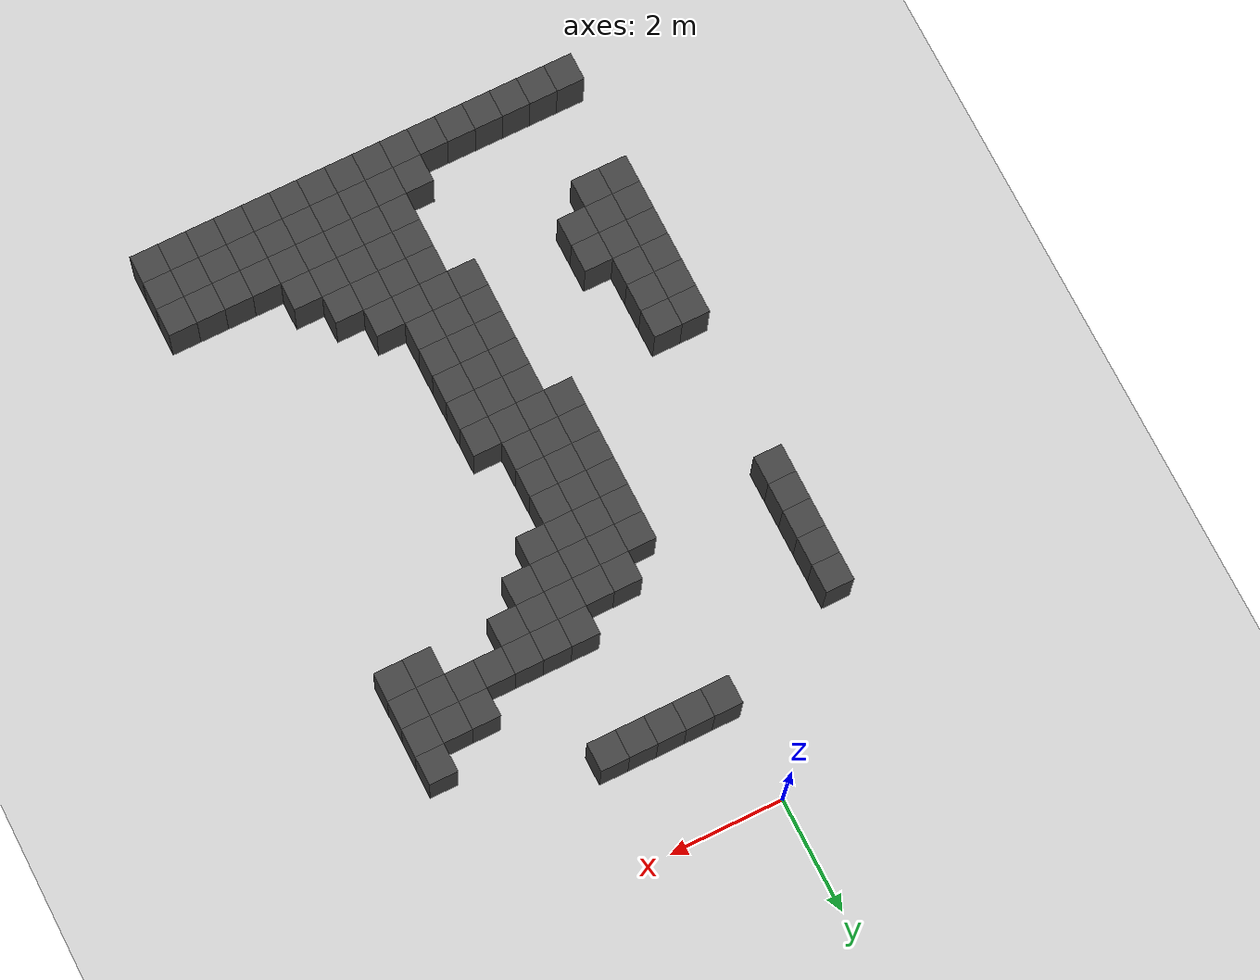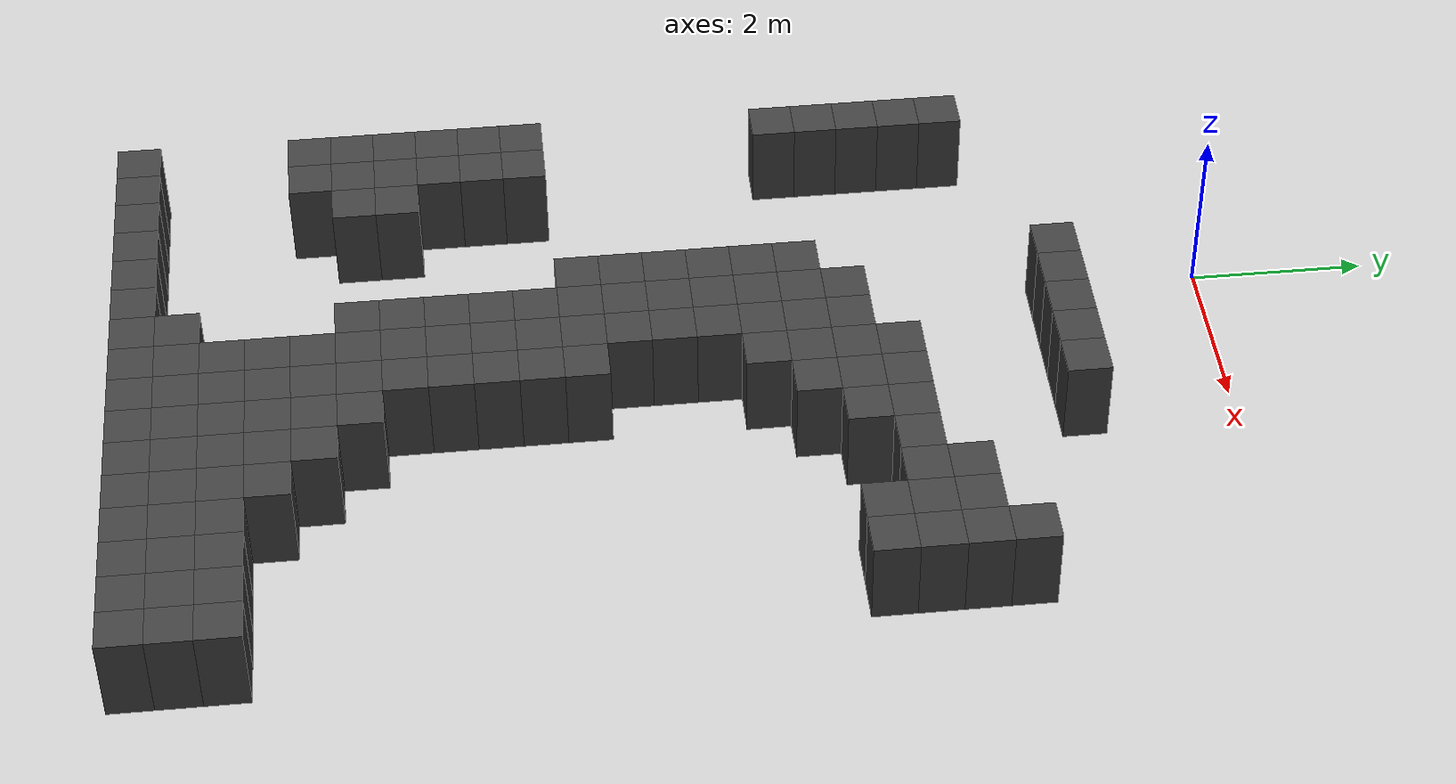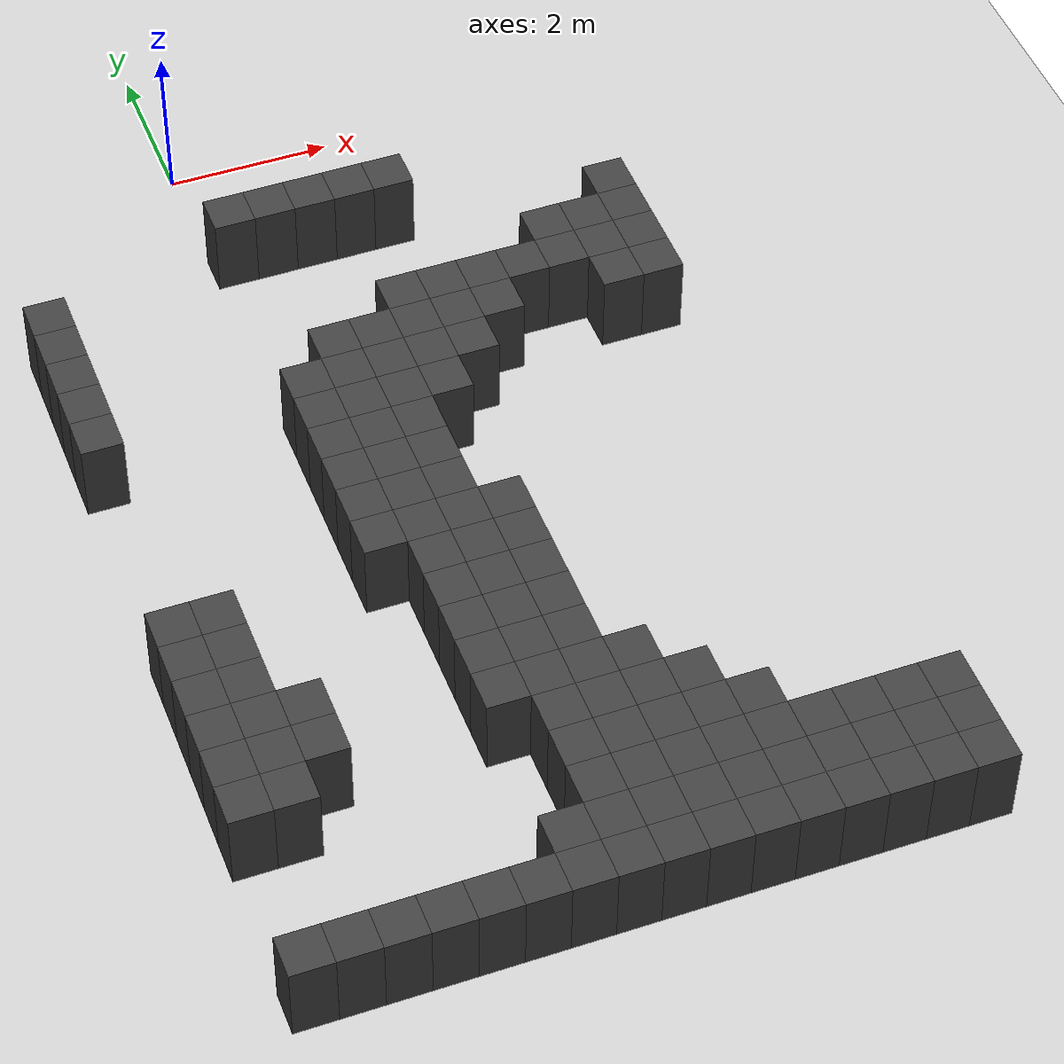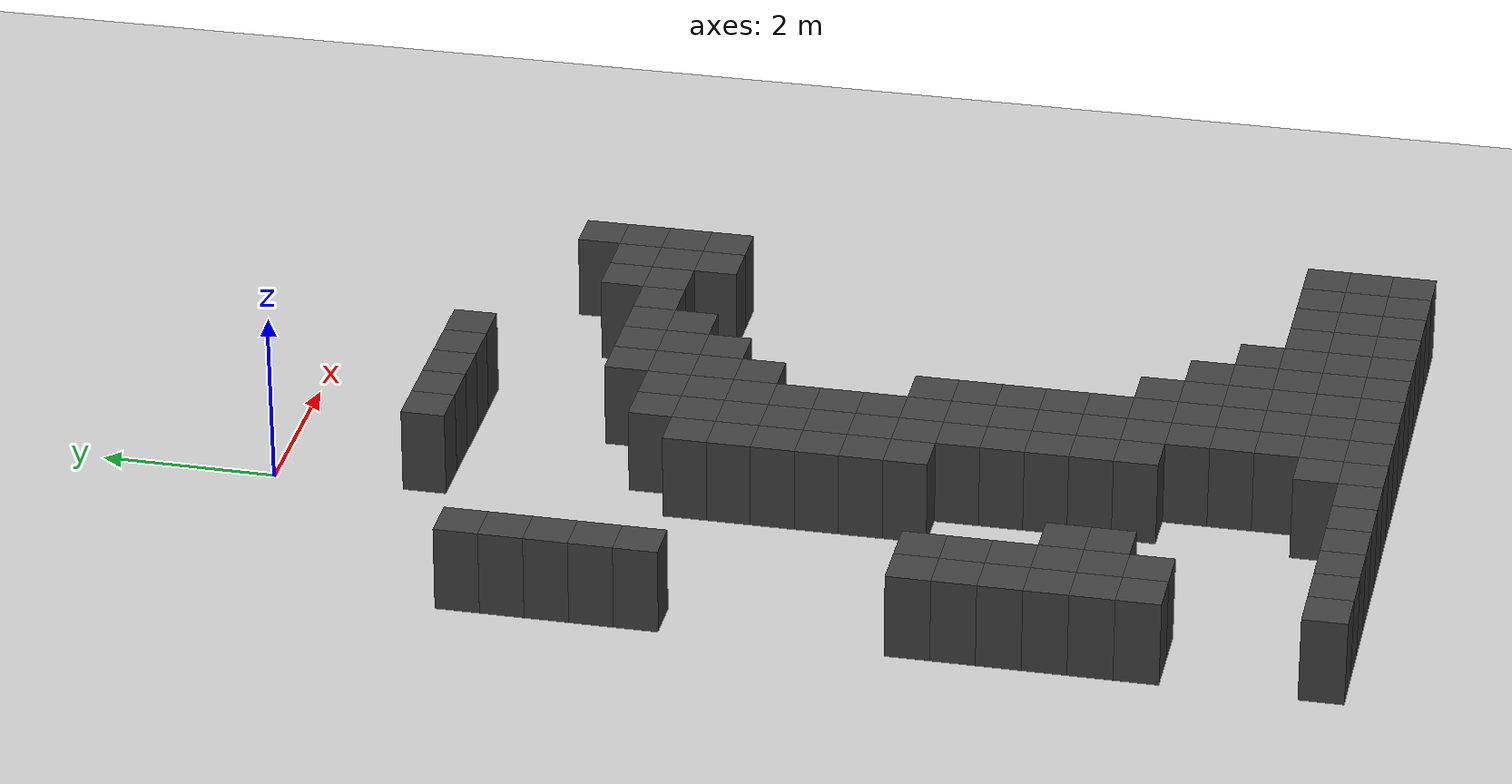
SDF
<sdf version="1.7">
 <world name="map_8382">
  <model name="ground_plane">
   <static>true</static>
   <link name="link">
    <collision name="collision">
     <geometry><plane><normal>0 0 1</normal><size>200 200</size></plane></geometry>
    </collision>
    <visual name="visual">
     <geometry><plane><normal>0 0 1</normal><size>200 200</size></plane></geometry>
     <material><ambient>0.8 0.8 0.8 1</ambient><diffuse>0.8 0.8 0.8 1</diffuse></material>
    </visual>
   </link>
  </model>
  <model name="maze_environment">
   <static>true</static>
   <link name="wall_458">
    <pose>0.250 -1.750 0.500 0 0 0</pose>
    <collision name="col"><geometry><box><size>0.5 0.5 1.0</size></box></geometry></collision>
    <visual name="vis">
     <geometry><box><size>0.5 0.5 1.0</size></box></geometry>
     <material><ambient>0.15 0.15 0.15 1</ambient><diffuse>0.25 0.25 0.25 1</diffuse></material>
    </visual>
   </link>
   <link name="wall_459">
    <pose>0.750 -1.750 0.500 0 0 0</pose>
    <collision name="col"><geometry><box><size>0.5 0.5 1.0</size></box></geometry></collision>
    <visual name="vis">
     <geometry><box><size>0.5 0.5 1.0</size></box></geometry>
     <material><ambient>0.15 0.15 0.15 1</ambient><diffuse>0.25 0.25 0.25 1</diffuse></material>
    </visual>
   </link>
   <link name="wall_460">
    <pose>1.250 -1.750 0.500 0 0 0</pose>
    <collision name="col"><geometry><box><size>0.5 0.5 1.0</size></box></geometry></collision>
    <visual name="vis">
     <geometry><box><size>0.5 0.5 1.0</size></box></geometry>
     <material><ambient>0.15 0.15 0.15 1</ambient><diffuse>0.25 0.25 0.25 1</diffuse></material>
    </visual>
   </link>
   <link name="wall_461">
    <pose>1.750 -1.750 0.500 0 0 0</pose>
    <collision name="col"><geometry><box><size>0.5 0.5 1.0</size></box></geometry></collision>
    <visual name="vis">
     <geometry><box><size>0.5 0.5 1.0</size></box></geometry>
     <material><ambient>0.15 0.15 0.15 1</ambient><diffuse>0.25 0.25 0.25 1</diffuse></material>
    </visual>
   </link>
   <link name="wall_462">
    <pose>2.250 -1.750 0.500 0 0 0</pose>
    <collision name="col"><geometry><box><size>0.5 0.5 1.0</size></box></geometry></collision>
    <visual name="vis">
     <geometry><box><size>0.5 0.5 1.0</size></box></geometry>
     <material><ambient>0.15 0.15 0.15 1</ambient><diffuse>0.25 0.25 0.25 1</diffuse></material>
    </visual>
   </link>
   <link name="wall_501">
    <pose>-2.250 -2.750 0.500 0 0 0</pose>
    <collision name="col"><geometry><box><size>0.5 0.5 1.0</size></box></geometry></collision>
    <visual name="vis">
     <geometry><box><size>0.5 0.5 1.0</size></box></geometry>
     <material><ambient>0.15 0.15 0.15 1</ambient><diffuse>0.25 0.25 0.25 1</diffuse></material>
    </visual>
   </link>
   <link name="wall_502">
    <pose>4.750 -2.750 0.500 0 0 0</pose>
    <collision name="col"><geometry><box><size>0.5 0.5 1.0</size></box></geometry></collision>
    <visual name="vis">
     <geometry><box><size>0.5 0.5 1.0</size></box></geometry>
     <material><ambient>0.15 0.15 0.15 1</ambient><diffuse>0.25 0.25 0.25 1</diffuse></material>
    </visual>
   </link>
   <link name="wall_522">
    <pose>-2.250 -3.250 0.500 0 0 0</pose>
    <collision name="col"><geometry><box><size>0.5 0.5 1.0</size></box></geometry></collision>
    <visual name="vis">
     <geometry><box><size>0.5 0.5 1.0</size></box></geometry>
     <material><ambient>0.15 0.15 0.15 1</ambient><diffuse>0.25 0.25 0.25 1</diffuse></material>
    </visual>
   </link>
   <link name="wall_523">
    <pose>3.750 -3.250 0.500 0 0 0</pose>
    <collision name="col"><geometry><box><size>0.5 0.5 1.0</size></box></geometry></collision>
    <visual name="vis">
     <geometry><box><size>0.5 0.5 1.0</size></box></geometry>
     <material><ambient>0.15 0.15 0.15 1</ambient><diffuse>0.25 0.25 0.25 1</diffuse></material>
    </visual>
   </link>
   <link name="wall_524">
    <pose>4.250 -3.250 0.500 0 0 0</pose>
    <collision name="col"><geometry><box><size>0.5 0.5 1.0</size></box></geometry></collision>
    <visual name="vis">
     <geometry><box><size>0.5 0.5 1.0</size></box></geometry>
     <material><ambient>0.15 0.15 0.15 1</ambient><diffuse>0.25 0.25 0.25 1</diffuse></material>
    </visual>
   </link>
   <link name="wall_525">
    <pose>4.750 -3.250 0.500 0 0 0</pose>
    <collision name="col"><geometry><box><size>0.5 0.5 1.0</size></box></geometry></collision>
    <visual name="vis">
     <geometry><box><size>0.5 0.5 1.0</size></box></geometry>
     <material><ambient>0.15 0.15 0.15 1</ambient><diffuse>0.25 0.25 0.25 1</diffuse></material>
    </visual>
   </link>
   <link name="wall_545">
    <pose>-2.250 -3.750 0.500 0 0 0</pose>
    <collision name="col"><geometry><box><size>0.5 0.5 1.0</size></box></geometry></collision>
    <visual name="vis">
     <geometry><box><size>0.5 0.5 1.0</size></box></geometry>
     <material><ambient>0.15 0.15 0.15 1</ambient><diffuse>0.25 0.25 0.25 1</diffuse></material>
    </visual>
   </link>
   <link name="wall_546">
    <pose>1.750 -3.750 0.500 0 0 0</pose>
    <collision name="col"><geometry><box><size>0.5 0.5 1.0</size></box></geometry></collision>
    <visual name="vis">
     <geometry><box><size>0.5 0.5 1.0</size></box></geometry>
     <material><ambient>0.15 0.15 0.15 1</ambient><diffuse>0.25 0.25 0.25 1</diffuse></material>
    </visual>
   </link>
   <link name="wall_547">
    <pose>2.250 -3.750 0.500 0 0 0</pose>
    <collision name="col"><geometry><box><size>0.5 0.5 1.0</size></box></geometry></collision>
    <visual name="vis">
     <geometry><box><size>0.5 0.5 1.0</size></box></geometry>
     <material><ambient>0.15 0.15 0.15 1</ambient><diffuse>0.25 0.25 0.25 1</diffuse></material>
    </visual>
   </link>
   <link name="wall_548">
    <pose>2.750 -3.750 0.500 0 0 0</pose>
    <collision name="col"><geometry><box><size>0.5 0.5 1.0</size></box></geometry></collision>
    <visual name="vis">
     <geometry><box><size>0.5 0.5 1.0</size></box></geometry>
     <material><ambient>0.15 0.15 0.15 1</ambient><diffuse>0.25 0.25 0.25 1</diffuse></material>
    </visual>
   </link>
   <link name="wall_549">
    <pose>3.250 -3.750 0.500 0 0 0</pose>
    <collision name="col"><geometry><box><size>0.5 0.5 1.0</size></box></geometry></collision>
    <visual name="vis">
     <geometry><box><size>0.5 0.5 1.0</size></box></geometry>
     <material><ambient>0.15 0.15 0.15 1</ambient><diffuse>0.25 0.25 0.25 1</diffuse></material>
    </visual>
   </link>
   <link name="wall_550">
    <pose>3.750 -3.750 0.500 0 0 0</pose>
    <collision name="col"><geometry><box><size>0.5 0.5 1.0</size></box></geometry></collision>
    <visual name="vis">
     <geometry><box><size>0.5 0.5 1.0</size></box></geometry>
     <material><ambient>0.15 0.15 0.15 1</ambient><diffuse>0.25 0.25 0.25 1</diffuse></material>
    </visual>
   </link>
   <link name="wall_551">
    <pose>4.250 -3.750 0.500 0 0 0</pose>
    <collision name="col"><geometry><box><size>0.5 0.5 1.0</size></box></geometry></collision>
    <visual name="vis">
     <geometry><box><size>0.5 0.5 1.0</size></box></geometry>
     <material><ambient>0.15 0.15 0.15 1</ambient><diffuse>0.25 0.25 0.25 1</diffuse></material>
    </visual>
   </link>
   <link name="wall_552">
    <pose>4.750 -3.750 0.500 0 0 0</pose>
    <collision name="col"><geometry><box><size>0.5 0.5 1.0</size></box></geometry></collision>
    <visual name="vis">
     <geometry><box><size>0.5 0.5 1.0</size></box></geometry>
     <material><ambient>0.15 0.15 0.15 1</ambient><diffuse>0.25 0.25 0.25 1</diffuse></material>
    </visual>
   </link>
   <link name="wall_570">
    <pose>-2.250 -4.250 0.500 0 0 0</pose>
    <collision name="col"><geometry><box><size>0.5 0.5 1.0</size></box></geometry></collision>
    <visual name="vis">
     <geometry><box><size>0.5 0.5 1.0</size></box></geometry>
     <material><ambient>0.15 0.15 0.15 1</ambient><diffuse>0.25 0.25 0.25 1</diffuse></material>
    </visual>
   </link>
   <link name="wall_571">
    <pose>0.750 -4.250 0.500 0 0 0</pose>
    <collision name="col"><geometry><box><size>0.5 0.5 1.0</size></box></geometry></collision>
    <visual name="vis">
     <geometry><box><size>0.5 0.5 1.0</size></box></geometry>
     <material><ambient>0.15 0.15 0.15 1</ambient><diffuse>0.25 0.25 0.25 1</diffuse></material>
    </visual>
   </link>
   <link name="wall_572">
    <pose>1.250 -4.250 0.500 0 0 0</pose>
    <collision name="col"><geometry><box><size>0.5 0.5 1.0</size></box></geometry></collision>
    <visual name="vis">
     <geometry><box><size>0.5 0.5 1.0</size></box></geometry>
     <material><ambient>0.15 0.15 0.15 1</ambient><diffuse>0.25 0.25 0.25 1</diffuse></material>
    </visual>
   </link>
   <link name="wall_573">
    <pose>1.750 -4.250 0.500 0 0 0</pose>
    <collision name="col"><geometry><box><size>0.5 0.5 1.0</size></box></geometry></collision>
    <visual name="vis">
     <geometry><box><size>0.5 0.5 1.0</size></box></geometry>
     <material><ambient>0.15 0.15 0.15 1</ambient><diffuse>0.25 0.25 0.25 1</diffuse></material>
    </visual>
   </link>
   <link name="wall_574">
    <pose>2.250 -4.250 0.500 0 0 0</pose>
    <collision name="col"><geometry><box><size>0.5 0.5 1.0</size></box></geometry></collision>
    <visual name="vis">
     <geometry><box><size>0.5 0.5 1.0</size></box></geometry>
     <material><ambient>0.15 0.15 0.15 1</ambient><diffuse>0.25 0.25 0.25 1</diffuse></material>
    </visual>
   </link>
   <link name="wall_575">
    <pose>2.750 -4.250 0.500 0 0 0</pose>
    <collision name="col"><geometry><box><size>0.5 0.5 1.0</size></box></geometry></collision>
    <visual name="vis">
     <geometry><box><size>0.5 0.5 1.0</size></box></geometry>
     <material><ambient>0.15 0.15 0.15 1</ambient><diffuse>0.25 0.25 0.25 1</diffuse></material>
    </visual>
   </link>
   <link name="wall_576">
    <pose>4.250 -4.250 0.500 0 0 0</pose>
    <collision name="col"><geometry><box><size>0.5 0.5 1.0</size></box></geometry></collision>
    <visual name="vis">
     <geometry><box><size>0.5 0.5 1.0</size></box></geometry>
     <material><ambient>0.15 0.15 0.15 1</ambient><diffuse>0.25 0.25 0.25 1</diffuse></material>
    </visual>
   </link>
   <link name="wall_577">
    <pose>4.750 -4.250 0.500 0 0 0</pose>
    <collision name="col"><geometry><box><size>0.5 0.5 1.0</size></box></geometry></collision>
    <visual name="vis">
     <geometry><box><size>0.5 0.5 1.0</size></box></geometry>
     <material><ambient>0.15 0.15 0.15 1</ambient><diffuse>0.25 0.25 0.25 1</diffuse></material>
    </visual>
   </link>
   <link name="wall_590">
    <pose>-2.250 -4.750 0.500 0 0 0</pose>
    <collision name="col"><geometry><box><size>0.5 0.5 1.0</size></box></geometry></collision>
    <visual name="vis">
     <geometry><box><size>0.5 0.5 1.0</size></box></geometry>
     <material><ambient>0.15 0.15 0.15 1</ambient><diffuse>0.25 0.25 0.25 1</diffuse></material>
    </visual>
   </link>
   <link name="wall_591">
    <pose>0.250 -4.750 0.500 0 0 0</pose>
    <collision name="col"><geometry><box><size>0.5 0.5 1.0</size></box></geometry></collision>
    <visual name="vis">
     <geometry><box><size>0.5 0.5 1.0</size></box></geometry>
     <material><ambient>0.15 0.15 0.15 1</ambient><diffuse>0.25 0.25 0.25 1</diffuse></material>
    </visual>
   </link>
   <link name="wall_592">
    <pose>0.750 -4.750 0.500 0 0 0</pose>
    <collision name="col"><geometry><box><size>0.5 0.5 1.0</size></box></geometry></collision>
    <visual name="vis">
     <geometry><box><size>0.5 0.5 1.0</size></box></geometry>
     <material><ambient>0.15 0.15 0.15 1</ambient><diffuse>0.25 0.25 0.25 1</diffuse></material>
    </visual>
   </link>
   <link name="wall_593">
    <pose>1.250 -4.750 0.500 0 0 0</pose>
    <collision name="col"><geometry><box><size>0.5 0.5 1.0</size></box></geometry></collision>
    <visual name="vis">
     <geometry><box><size>0.5 0.5 1.0</size></box></geometry>
     <material><ambient>0.15 0.15 0.15 1</ambient><diffuse>0.25 0.25 0.25 1</diffuse></material>
    </visual>
   </link>
   <link name="wall_594">
    <pose>1.750 -4.750 0.500 0 0 0</pose>
    <collision name="col"><geometry><box><size>0.5 0.5 1.0</size></box></geometry></collision>
    <visual name="vis">
     <geometry><box><size>0.5 0.5 1.0</size></box></geometry>
     <material><ambient>0.15 0.15 0.15 1</ambient><diffuse>0.25 0.25 0.25 1</diffuse></material>
    </visual>
   </link>
   <link name="wall_595">
    <pose>2.250 -4.750 0.500 0 0 0</pose>
    <collision name="col"><geometry><box><size>0.5 0.5 1.0</size></box></geometry></collision>
    <visual name="vis">
     <geometry><box><size>0.5 0.5 1.0</size></box></geometry>
     <material><ambient>0.15 0.15 0.15 1</ambient><diffuse>0.25 0.25 0.25 1</diffuse></material>
    </visual>
   </link>
   <link name="wall_609">
    <pose>0.250 -5.250 0.500 0 0 0</pose>
    <collision name="col"><geometry><box><size>0.5 0.5 1.0</size></box></geometry></collision>
    <visual name="vis">
     <geometry><box><size>0.5 0.5 1.0</size></box></geometry>
     <material><ambient>0.15 0.15 0.15 1</ambient><diffuse>0.25 0.25 0.25 1</diffuse></material>
    </visual>
   </link>
   <link name="wall_610">
    <pose>0.750 -5.250 0.500 0 0 0</pose>
    <collision name="col"><geometry><box><size>0.5 0.5 1.0</size></box></geometry></collision>
    <visual name="vis">
     <geometry><box><size>0.5 0.5 1.0</size></box></geometry>
     <material><ambient>0.15 0.15 0.15 1</ambient><diffuse>0.25 0.25 0.25 1</diffuse></material>
    </visual>
   </link>
   <link name="wall_611">
    <pose>1.250 -5.250 0.500 0 0 0</pose>
    <collision name="col"><geometry><box><size>0.5 0.5 1.0</size></box></geometry></collision>
    <visual name="vis">
     <geometry><box><size>0.5 0.5 1.0</size></box></geometry>
     <material><ambient>0.15 0.15 0.15 1</ambient><diffuse>0.25 0.25 0.25 1</diffuse></material>
    </visual>
   </link>
   <link name="wall_612">
    <pose>1.750 -5.250 0.500 0 0 0</pose>
    <collision name="col"><geometry><box><size>0.5 0.5 1.0</size></box></geometry></collision>
    <visual name="vis">
     <geometry><box><size>0.5 0.5 1.0</size></box></geometry>
     <material><ambient>0.15 0.15 0.15 1</ambient><diffuse>0.25 0.25 0.25 1</diffuse></material>
    </visual>
   </link>
   <link name="wall_624">
    <pose>0.250 -5.750 0.500 0 0 0</pose>
    <collision name="col"><geometry><box><size>0.5 0.5 1.0</size></box></geometry></collision>
    <visual name="vis">
     <geometry><box><size>0.5 0.5 1.0</size></box></geometry>
     <material><ambient>0.15 0.15 0.15 1</ambient><diffuse>0.25 0.25 0.25 1</diffuse></material>
    </visual>
   </link>
   <link name="wall_625">
    <pose>0.750 -5.750 0.500 0 0 0</pose>
    <collision name="col"><geometry><box><size>0.5 0.5 1.0</size></box></geometry></collision>
    <visual name="vis">
     <geometry><box><size>0.5 0.5 1.0</size></box></geometry>
     <material><ambient>0.15 0.15 0.15 1</ambient><diffuse>0.25 0.25 0.25 1</diffuse></material>
    </visual>
   </link>
   <link name="wall_626">
    <pose>1.250 -5.750 0.500 0 0 0</pose>
    <collision name="col"><geometry><box><size>0.5 0.5 1.0</size></box></geometry></collision>
    <visual name="vis">
     <geometry><box><size>0.5 0.5 1.0</size></box></geometry>
     <material><ambient>0.15 0.15 0.15 1</ambient><diffuse>0.25 0.25 0.25 1</diffuse></material>
    </visual>
   </link>
   <link name="wall_636">
    <pose>0.250 -6.250 0.500 0 0 0</pose>
    <collision name="col"><geometry><box><size>0.5 0.5 1.0</size></box></geometry></collision>
    <visual name="vis">
     <geometry><box><size>0.5 0.5 1.0</size></box></geometry>
     <material><ambient>0.15 0.15 0.15 1</ambient><diffuse>0.25 0.25 0.25 1</diffuse></material>
    </visual>
   </link>
   <link name="wall_637">
    <pose>0.750 -6.250 0.500 0 0 0</pose>
    <collision name="col"><geometry><box><size>0.5 0.5 1.0</size></box></geometry></collision>
    <visual name="vis">
     <geometry><box><size>0.5 0.5 1.0</size></box></geometry>
     <material><ambient>0.15 0.15 0.15 1</ambient><diffuse>0.25 0.25 0.25 1</diffuse></material>
    </visual>
   </link>
   <link name="wall_638">
    <pose>1.250 -6.250 0.500 0 0 0</pose>
    <collision name="col"><geometry><box><size>0.5 0.5 1.0</size></box></geometry></collision>
    <visual name="vis">
     <geometry><box><size>0.5 0.5 1.0</size></box></geometry>
     <material><ambient>0.15 0.15 0.15 1</ambient><diffuse>0.25 0.25 0.25 1</diffuse></material>
    </visual>
   </link>
   <link name="wall_647">
    <pose>0.250 -6.750 0.500 0 0 0</pose>
    <collision name="col"><geometry><box><size>0.5 0.5 1.0</size></box></geometry></collision>
    <visual name="vis">
     <geometry><box><size>0.5 0.5 1.0</size></box></geometry>
     <material><ambient>0.15 0.15 0.15 1</ambient><diffuse>0.25 0.25 0.25 1</diffuse></material>
    </visual>
   </link>
   <link name="wall_648">
    <pose>0.750 -6.750 0.500 0 0 0</pose>
    <collision name="col"><geometry><box><size>0.5 0.5 1.0</size></box></geometry></collision>
    <visual name="vis">
     <geometry><box><size>0.5 0.5 1.0</size></box></geometry>
     <material><ambient>0.15 0.15 0.15 1</ambient><diffuse>0.25 0.25 0.25 1</diffuse></material>
    </visual>
   </link>
   <link name="wall_649">
    <pose>1.250 -6.750 0.500 0 0 0</pose>
    <collision name="col"><geometry><box><size>0.5 0.5 1.0</size></box></geometry></collision>
    <visual name="vis">
     <geometry><box><size>0.5 0.5 1.0</size></box></geometry>
     <material><ambient>0.15 0.15 0.15 1</ambient><diffuse>0.25 0.25 0.25 1</diffuse></material>
    </visual>
   </link>
   <link name="wall_655">
    <pose>0.250 -7.250 0.500 0 0 0</pose>
    <collision name="col"><geometry><box><size>0.5 0.5 1.0</size></box></geometry></collision>
    <visual name="vis">
     <geometry><box><size>0.5 0.5 1.0</size></box></geometry>
     <material><ambient>0.15 0.15 0.15 1</ambient><diffuse>0.25 0.25 0.25 1</diffuse></material>
    </visual>
   </link>
   <link name="wall_656">
    <pose>0.750 -7.250 0.500 0 0 0</pose>
    <collision name="col"><geometry><box><size>0.5 0.5 1.0</size></box></geometry></collision>
    <visual name="vis">
     <geometry><box><size>0.5 0.5 1.0</size></box></geometry>
     <material><ambient>0.15 0.15 0.15 1</ambient><diffuse>0.25 0.25 0.25 1</diffuse></material>
    </visual>
   </link>
   <link name="wall_657">
    <pose>1.250 -7.250 0.500 0 0 0</pose>
    <collision name="col"><geometry><box><size>0.5 0.5 1.0</size></box></geometry></collision>
    <visual name="vis">
     <geometry><box><size>0.5 0.5 1.0</size></box></geometry>
     <material><ambient>0.15 0.15 0.15 1</ambient><diffuse>0.25 0.25 0.25 1</diffuse></material>
    </visual>
   </link>
   <link name="wall_658">
    <pose>1.750 -7.250 0.500 0 0 0</pose>
    <collision name="col"><geometry><box><size>0.5 0.5 1.0</size></box></geometry></collision>
    <visual name="vis">
     <geometry><box><size>0.5 0.5 1.0</size></box></geometry>
     <material><ambient>0.15 0.15 0.15 1</ambient><diffuse>0.25 0.25 0.25 1</diffuse></material>
    </visual>
   </link>
   <link name="wall_662">
    <pose>-2.250 -7.750 0.500 0 0 0</pose>
    <collision name="col"><geometry><box><size>0.5 0.5 1.0</size></box></geometry></collision>
    <visual name="vis">
     <geometry><box><size>0.5 0.5 1.0</size></box></geometry>
     <material><ambient>0.15 0.15 0.15 1</ambient><diffuse>0.25 0.25 0.25 1</diffuse></material>
    </visual>
   </link>
   <link name="wall_663">
    <pose>-1.750 -7.750 0.500 0 0 0</pose>
    <collision name="col"><geometry><box><size>0.5 0.5 1.0</size></box></geometry></collision>
    <visual name="vis">
     <geometry><box><size>0.5 0.5 1.0</size></box></geometry>
     <material><ambient>0.15 0.15 0.15 1</ambient><diffuse>0.25 0.25 0.25 1</diffuse></material>
    </visual>
   </link>
   <link name="wall_664">
    <pose>0.750 -7.750 0.500 0 0 0</pose>
    <collision name="col"><geometry><box><size>0.5 0.5 1.0</size></box></geometry></collision>
    <visual name="vis">
     <geometry><box><size>0.5 0.5 1.0</size></box></geometry>
     <material><ambient>0.15 0.15 0.15 1</ambient><diffuse>0.25 0.25 0.25 1</diffuse></material>
    </visual>
   </link>
   <link name="wall_665">
    <pose>1.250 -7.750 0.500 0 0 0</pose>
    <collision name="col"><geometry><box><size>0.5 0.5 1.0</size></box></geometry></collision>
    <visual name="vis">
     <geometry><box><size>0.5 0.5 1.0</size></box></geometry>
     <material><ambient>0.15 0.15 0.15 1</ambient><diffuse>0.25 0.25 0.25 1</diffuse></material>
    </visual>
   </link>
   <link name="wall_666">
    <pose>1.750 -7.750 0.500 0 0 0</pose>
    <collision name="col"><geometry><box><size>0.5 0.5 1.0</size></box></geometry></collision>
    <visual name="vis">
     <geometry><box><size>0.5 0.5 1.0</size></box></geometry>
     <material><ambient>0.15 0.15 0.15 1</ambient><diffuse>0.25 0.25 0.25 1</diffuse></material>
    </visual>
   </link>
   <link name="wall_675">
    <pose>-2.250 -8.250 0.500 0 0 0</pose>
    <collision name="col"><geometry><box><size>0.5 0.5 1.0</size></box></geometry></collision>
    <visual name="vis">
     <geometry><box><size>0.5 0.5 1.0</size></box></geometry>
     <material><ambient>0.15 0.15 0.15 1</ambient><diffuse>0.25 0.25 0.25 1</diffuse></material>
    </visual>
   </link>
   <link name="wall_676">
    <pose>-1.750 -8.250 0.500 0 0 0</pose>
    <collision name="col"><geometry><box><size>0.5 0.5 1.0</size></box></geometry></collision>
    <visual name="vis">
     <geometry><box><size>0.5 0.5 1.0</size></box></geometry>
     <material><ambient>0.15 0.15 0.15 1</ambient><diffuse>0.25 0.25 0.25 1</diffuse></material>
    </visual>
   </link>
   <link name="wall_677">
    <pose>0.750 -8.250 0.500 0 0 0</pose>
    <collision name="col"><geometry><box><size>0.5 0.5 1.0</size></box></geometry></collision>
    <visual name="vis">
     <geometry><box><size>0.5 0.5 1.0</size></box></geometry>
     <material><ambient>0.15 0.15 0.15 1</ambient><diffuse>0.25 0.25 0.25 1</diffuse></material>
    </visual>
   </link>
   <link name="wall_678">
    <pose>1.250 -8.250 0.500 0 0 0</pose>
    <collision name="col"><geometry><box><size>0.5 0.5 1.0</size></box></geometry></collision>
    <visual name="vis">
     <geometry><box><size>0.5 0.5 1.0</size></box></geometry>
     <material><ambient>0.15 0.15 0.15 1</ambient><diffuse>0.25 0.25 0.25 1</diffuse></material>
    </visual>
   </link>
   <link name="wall_679">
    <pose>1.750 -8.250 0.500 0 0 0</pose>
    <collision name="col"><geometry><box><size>0.5 0.5 1.0</size></box></geometry></collision>
    <visual name="vis">
     <geometry><box><size>0.5 0.5 1.0</size></box></geometry>
     <material><ambient>0.15 0.15 0.15 1</ambient><diffuse>0.25 0.25 0.25 1</diffuse></material>
    </visual>
   </link>
   <link name="wall_691">
    <pose>-2.250 -8.750 0.500 0 0 0</pose>
    <collision name="col"><geometry><box><size>0.5 0.5 1.0</size></box></geometry></collision>
    <visual name="vis">
     <geometry><box><size>0.5 0.5 1.0</size></box></geometry>
     <material><ambient>0.15 0.15 0.15 1</ambient><diffuse>0.25 0.25 0.25 1</diffuse></material>
    </visual>
   </link>
   <link name="wall_692">
    <pose>-1.750 -8.750 0.500 0 0 0</pose>
    <collision name="col"><geometry><box><size>0.5 0.5 1.0</size></box></geometry></collision>
    <visual name="vis">
     <geometry><box><size>0.5 0.5 1.0</size></box></geometry>
     <material><ambient>0.15 0.15 0.15 1</ambient><diffuse>0.25 0.25 0.25 1</diffuse></material>
    </visual>
   </link>
   <link name="wall_693">
    <pose>0.750 -8.750 0.500 0 0 0</pose>
    <collision name="col"><geometry><box><size>0.5 0.5 1.0</size></box></geometry></collision>
    <visual name="vis">
     <geometry><box><size>0.5 0.5 1.0</size></box></geometry>
     <material><ambient>0.15 0.15 0.15 1</ambient><diffuse>0.25 0.25 0.25 1</diffuse></material>
    </visual>
   </link>
   <link name="wall_694">
    <pose>1.250 -8.750 0.500 0 0 0</pose>
    <collision name="col"><geometry><box><size>0.5 0.5 1.0</size></box></geometry></collision>
    <visual name="vis">
     <geometry><box><size>0.5 0.5 1.0</size></box></geometry>
     <material><ambient>0.15 0.15 0.15 1</ambient><diffuse>0.25 0.25 0.25 1</diffuse></material>
    </visual>
   </link>
   <link name="wall_695">
    <pose>1.750 -8.750 0.500 0 0 0</pose>
    <collision name="col"><geometry><box><size>0.5 0.5 1.0</size></box></geometry></collision>
    <visual name="vis">
     <geometry><box><size>0.5 0.5 1.0</size></box></geometry>
     <material><ambient>0.15 0.15 0.15 1</ambient><diffuse>0.25 0.25 0.25 1</diffuse></material>
    </visual>
   </link>
   <link name="wall_708">
    <pose>-2.250 -9.250 0.500 0 0 0</pose>
    <collision name="col"><geometry><box><size>0.5 0.5 1.0</size></box></geometry></collision>
    <visual name="vis">
     <geometry><box><size>0.5 0.5 1.0</size></box></geometry>
     <material><ambient>0.15 0.15 0.15 1</ambient><diffuse>0.25 0.25 0.25 1</diffuse></material>
    </visual>
   </link>
   <link name="wall_709">
    <pose>-1.750 -9.250 0.500 0 0 0</pose>
    <collision name="col"><geometry><box><size>0.5 0.5 1.0</size></box></geometry></collision>
    <visual name="vis">
     <geometry><box><size>0.5 0.5 1.0</size></box></geometry>
     <material><ambient>0.15 0.15 0.15 1</ambient><diffuse>0.25 0.25 0.25 1</diffuse></material>
    </visual>
   </link>
   <link name="wall_710">
    <pose>-1.250 -9.250 0.500 0 0 0</pose>
    <collision name="col"><geometry><box><size>0.5 0.5 1.0</size></box></geometry></collision>
    <visual name="vis">
     <geometry><box><size>0.5 0.5 1.0</size></box></geometry>
     <material><ambient>0.15 0.15 0.15 1</ambient><diffuse>0.25 0.25 0.25 1</diffuse></material>
    </visual>
   </link>
   <link name="wall_711">
    <pose>0.750 -9.250 0.500 0 0 0</pose>
    <collision name="col"><geometry><box><size>0.5 0.5 1.0</size></box></geometry></collision>
    <visual name="vis">
     <geometry><box><size>0.5 0.5 1.0</size></box></geometry>
     <material><ambient>0.15 0.15 0.15 1</ambient><diffuse>0.25 0.25 0.25 1</diffuse></material>
    </visual>
   </link>
   <link name="wall_712">
    <pose>1.250 -9.250 0.500 0 0 0</pose>
    <collision name="col"><geometry><box><size>0.5 0.5 1.0</size></box></geometry></collision>
    <visual name="vis">
     <geometry><box><size>0.5 0.5 1.0</size></box></geometry>
     <material><ambient>0.15 0.15 0.15 1</ambient><diffuse>0.25 0.25 0.25 1</diffuse></material>
    </visual>
   </link>
   <link name="wall_713">
    <pose>1.750 -9.250 0.500 0 0 0</pose>
    <collision name="col"><geometry><box><size>0.5 0.5 1.0</size></box></geometry></collision>
    <visual name="vis">
     <geometry><box><size>0.5 0.5 1.0</size></box></geometry>
     <material><ambient>0.15 0.15 0.15 1</ambient><diffuse>0.25 0.25 0.25 1</diffuse></material>
    </visual>
   </link>
   <link name="wall_725">
    <pose>-2.250 -9.750 0.500 0 0 0</pose>
    <collision name="col"><geometry><box><size>0.5 0.5 1.0</size></box></geometry></collision>
    <visual name="vis">
     <geometry><box><size>0.5 0.5 1.0</size></box></geometry>
     <material><ambient>0.15 0.15 0.15 1</ambient><diffuse>0.25 0.25 0.25 1</diffuse></material>
    </visual>
   </link>
   <link name="wall_726">
    <pose>-1.750 -9.750 0.500 0 0 0</pose>
    <collision name="col"><geometry><box><size>0.5 0.5 1.0</size></box></geometry></collision>
    <visual name="vis">
     <geometry><box><size>0.5 0.5 1.0</size></box></geometry>
     <material><ambient>0.15 0.15 0.15 1</ambient><diffuse>0.25 0.25 0.25 1</diffuse></material>
    </visual>
   </link>
   <link name="wall_727">
    <pose>-1.250 -9.750 0.500 0 0 0</pose>
    <collision name="col"><geometry><box><size>0.5 0.5 1.0</size></box></geometry></collision>
    <visual name="vis">
     <geometry><box><size>0.5 0.5 1.0</size></box></geometry>
     <material><ambient>0.15 0.15 0.15 1</ambient><diffuse>0.25 0.25 0.25 1</diffuse></material>
    </visual>
   </link>
   <link name="wall_728">
    <pose>0.750 -9.750 0.500 0 0 0</pose>
    <collision name="col"><geometry><box><size>0.5 0.5 1.0</size></box></geometry></collision>
    <visual name="vis">
     <geometry><box><size>0.5 0.5 1.0</size></box></geometry>
     <material><ambient>0.15 0.15 0.15 1</ambient><diffuse>0.25 0.25 0.25 1</diffuse></material>
    </visual>
   </link>
   <link name="wall_729">
    <pose>1.250 -9.750 0.500 0 0 0</pose>
    <collision name="col"><geometry><box><size>0.5 0.5 1.0</size></box></geometry></collision>
    <visual name="vis">
     <geometry><box><size>0.5 0.5 1.0</size></box></geometry>
     <material><ambient>0.15 0.15 0.15 1</ambient><diffuse>0.25 0.25 0.25 1</diffuse></material>
    </visual>
   </link>
   <link name="wall_730">
    <pose>1.750 -9.750 0.500 0 0 0</pose>
    <collision name="col"><geometry><box><size>0.5 0.5 1.0</size></box></geometry></collision>
    <visual name="vis">
     <geometry><box><size>0.5 0.5 1.0</size></box></geometry>
     <material><ambient>0.15 0.15 0.15 1</ambient><diffuse>0.25 0.25 0.25 1</diffuse></material>
    </visual>
   </link>
   <link name="wall_731">
    <pose>2.250 -9.750 0.500 0 0 0</pose>
    <collision name="col"><geometry><box><size>0.5 0.5 1.0</size></box></geometry></collision>
    <visual name="vis">
     <geometry><box><size>0.5 0.5 1.0</size></box></geometry>
     <material><ambient>0.15 0.15 0.15 1</ambient><diffuse>0.25 0.25 0.25 1</diffuse></material>
    </visual>
   </link>
   <link name="wall_741">
    <pose>-2.250 -10.250 0.500 0 0 0</pose>
    <collision name="col"><geometry><box><size>0.5 0.5 1.0</size></box></geometry></collision>
    <visual name="vis">
     <geometry><box><size>0.5 0.5 1.0</size></box></geometry>
     <material><ambient>0.15 0.15 0.15 1</ambient><diffuse>0.25 0.25 0.25 1</diffuse></material>
    </visual>
   </link>
   <link name="wall_742">
    <pose>-1.750 -10.250 0.500 0 0 0</pose>
    <collision name="col"><geometry><box><size>0.5 0.5 1.0</size></box></geometry></collision>
    <visual name="vis">
     <geometry><box><size>0.5 0.5 1.0</size></box></geometry>
     <material><ambient>0.15 0.15 0.15 1</ambient><diffuse>0.25 0.25 0.25 1</diffuse></material>
    </visual>
   </link>
   <link name="wall_743">
    <pose>1.250 -10.250 0.500 0 0 0</pose>
    <collision name="col"><geometry><box><size>0.5 0.5 1.0</size></box></geometry></collision>
    <visual name="vis">
     <geometry><box><size>0.5 0.5 1.0</size></box></geometry>
     <material><ambient>0.15 0.15 0.15 1</ambient><diffuse>0.25 0.25 0.25 1</diffuse></material>
    </visual>
   </link>
   <link name="wall_744">
    <pose>1.750 -10.250 0.500 0 0 0</pose>
    <collision name="col"><geometry><box><size>0.5 0.5 1.0</size></box></geometry></collision>
    <visual name="vis">
     <geometry><box><size>0.5 0.5 1.0</size></box></geometry>
     <material><ambient>0.15 0.15 0.15 1</ambient><diffuse>0.25 0.25 0.25 1</diffuse></material>
    </visual>
   </link>
   <link name="wall_745">
    <pose>2.250 -10.250 0.500 0 0 0</pose>
    <collision name="col"><geometry><box><size>0.5 0.5 1.0</size></box></geometry></collision>
    <visual name="vis">
     <geometry><box><size>0.5 0.5 1.0</size></box></geometry>
     <material><ambient>0.15 0.15 0.15 1</ambient><diffuse>0.25 0.25 0.25 1</diffuse></material>
    </visual>
   </link>
   <link name="wall_746">
    <pose>2.750 -10.250 0.500 0 0 0</pose>
    <collision name="col"><geometry><box><size>0.5 0.5 1.0</size></box></geometry></collision>
    <visual name="vis">
     <geometry><box><size>0.5 0.5 1.0</size></box></geometry>
     <material><ambient>0.15 0.15 0.15 1</ambient><diffuse>0.25 0.25 0.25 1</diffuse></material>
    </visual>
   </link>
   <link name="wall_756">
    <pose>1.250 -10.750 0.500 0 0 0</pose>
    <collision name="col"><geometry><box><size>0.5 0.5 1.0</size></box></geometry></collision>
    <visual name="vis">
     <geometry><box><size>0.5 0.5 1.0</size></box></geometry>
     <material><ambient>0.15 0.15 0.15 1</ambient><diffuse>0.25 0.25 0.25 1</diffuse></material>
    </visual>
   </link>
   <link name="wall_757">
    <pose>1.750 -10.750 0.500 0 0 0</pose>
    <collision name="col"><geometry><box><size>0.5 0.5 1.0</size></box></geometry></collision>
    <visual name="vis">
     <geometry><box><size>0.5 0.5 1.0</size></box></geometry>
     <material><ambient>0.15 0.15 0.15 1</ambient><diffuse>0.25 0.25 0.25 1</diffuse></material>
    </visual>
   </link>
   <link name="wall_758">
    <pose>2.250 -10.750 0.500 0 0 0</pose>
    <collision name="col"><geometry><box><size>0.5 0.5 1.0</size></box></geometry></collision>
    <visual name="vis">
     <geometry><box><size>0.5 0.5 1.0</size></box></geometry>
     <material><ambient>0.15 0.15 0.15 1</ambient><diffuse>0.25 0.25 0.25 1</diffuse></material>
    </visual>
   </link>
   <link name="wall_759">
    <pose>2.750 -10.750 0.500 0 0 0</pose>
    <collision name="col"><geometry><box><size>0.5 0.5 1.0</size></box></geometry></collision>
    <visual name="vis">
     <geometry><box><size>0.5 0.5 1.0</size></box></geometry>
     <material><ambient>0.15 0.15 0.15 1</ambient><diffuse>0.25 0.25 0.25 1</diffuse></material>
    </visual>
   </link>
   <link name="wall_760">
    <pose>3.250 -10.750 0.500 0 0 0</pose>
    <collision name="col"><geometry><box><size>0.5 0.5 1.0</size></box></geometry></collision>
    <visual name="vis">
     <geometry><box><size>0.5 0.5 1.0</size></box></geometry>
     <material><ambient>0.15 0.15 0.15 1</ambient><diffuse>0.25 0.25 0.25 1</diffuse></material>
    </visual>
   </link>
   <link name="wall_773">
    <pose>1.250 -11.250 0.500 0 0 0</pose>
    <collision name="col"><geometry><box><size>0.5 0.5 1.0</size></box></geometry></collision>
    <visual name="vis">
     <geometry><box><size>0.5 0.5 1.0</size></box></geometry>
     <material><ambient>0.15 0.15 0.15 1</ambient><diffuse>0.25 0.25 0.25 1</diffuse></material>
    </visual>
   </link>
   <link name="wall_774">
    <pose>1.750 -11.250 0.500 0 0 0</pose>
    <collision name="col"><geometry><box><size>0.5 0.5 1.0</size></box></geometry></collision>
    <visual name="vis">
     <geometry><box><size>0.5 0.5 1.0</size></box></geometry>
     <material><ambient>0.15 0.15 0.15 1</ambient><diffuse>0.25 0.25 0.25 1</diffuse></material>
    </visual>
   </link>
   <link name="wall_775">
    <pose>2.250 -11.250 0.500 0 0 0</pose>
    <collision name="col"><geometry><box><size>0.5 0.5 1.0</size></box></geometry></collision>
    <visual name="vis">
     <geometry><box><size>0.5 0.5 1.0</size></box></geometry>
     <material><ambient>0.15 0.15 0.15 1</ambient><diffuse>0.25 0.25 0.25 1</diffuse></material>
    </visual>
   </link>
   <link name="wall_776">
    <pose>2.750 -11.250 0.500 0 0 0</pose>
    <collision name="col"><geometry><box><size>0.5 0.5 1.0</size></box></geometry></collision>
    <visual name="vis">
     <geometry><box><size>0.5 0.5 1.0</size></box></geometry>
     <material><ambient>0.15 0.15 0.15 1</ambient><diffuse>0.25 0.25 0.25 1</diffuse></material>
    </visual>
   </link>
   <link name="wall_777">
    <pose>3.250 -11.250 0.500 0 0 0</pose>
    <collision name="col"><geometry><box><size>0.5 0.5 1.0</size></box></geometry></collision>
    <visual name="vis">
     <geometry><box><size>0.5 0.5 1.0</size></box></geometry>
     <material><ambient>0.15 0.15 0.15 1</ambient><diffuse>0.25 0.25 0.25 1</diffuse></material>
    </visual>
   </link>
   <link name="wall_778">
    <pose>3.750 -11.250 0.500 0 0 0</pose>
    <collision name="col"><geometry><box><size>0.5 0.5 1.0</size></box></geometry></collision>
    <visual name="vis">
     <geometry><box><size>0.5 0.5 1.0</size></box></geometry>
     <material><ambient>0.15 0.15 0.15 1</ambient><diffuse>0.25 0.25 0.25 1</diffuse></material>
    </visual>
   </link>
   <link name="wall_779">
    <pose>4.250 -11.250 0.500 0 0 0</pose>
    <collision name="col"><geometry><box><size>0.5 0.5 1.0</size></box></geometry></collision>
    <visual name="vis">
     <geometry><box><size>0.5 0.5 1.0</size></box></geometry>
     <material><ambient>0.15 0.15 0.15 1</ambient><diffuse>0.25 0.25 0.25 1</diffuse></material>
    </visual>
   </link>
   <link name="wall_780">
    <pose>4.750 -11.250 0.500 0 0 0</pose>
    <collision name="col"><geometry><box><size>0.5 0.5 1.0</size></box></geometry></collision>
    <visual name="vis">
     <geometry><box><size>0.5 0.5 1.0</size></box></geometry>
     <material><ambient>0.15 0.15 0.15 1</ambient><diffuse>0.25 0.25 0.25 1</diffuse></material>
    </visual>
   </link>
   <link name="wall_781">
    <pose>5.250 -11.250 0.500 0 0 0</pose>
    <collision name="col"><geometry><box><size>0.5 0.5 1.0</size></box></geometry></collision>
    <visual name="vis">
     <geometry><box><size>0.5 0.5 1.0</size></box></geometry>
     <material><ambient>0.15 0.15 0.15 1</ambient><diffuse>0.25 0.25 0.25 1</diffuse></material>
    </visual>
   </link>
   <link name="wall_796">
    <pose>0.750 -11.750 0.500 0 0 0</pose>
    <collision name="col"><geometry><box><size>0.5 0.5 1.0</size></box></geometry></collision>
    <visual name="vis">
     <geometry><box><size>0.5 0.5 1.0</size></box></geometry>
     <material><ambient>0.15 0.15 0.15 1</ambient><diffuse>0.25 0.25 0.25 1</diffuse></material>
    </visual>
   </link>
   <link name="wall_797">
    <pose>1.250 -11.750 0.500 0 0 0</pose>
    <collision name="col"><geometry><box><size>0.5 0.5 1.0</size></box></geometry></collision>
    <visual name="vis">
     <geometry><box><size>0.5 0.5 1.0</size></box></geometry>
     <material><ambient>0.15 0.15 0.15 1</ambient><diffuse>0.25 0.25 0.25 1</diffuse></material>
    </visual>
   </link>
   <link name="wall_798">
    <pose>1.750 -11.750 0.500 0 0 0</pose>
    <collision name="col"><geometry><box><size>0.5 0.5 1.0</size></box></geometry></collision>
    <visual name="vis">
     <geometry><box><size>0.5 0.5 1.0</size></box></geometry>
     <material><ambient>0.15 0.15 0.15 1</ambient><diffuse>0.25 0.25 0.25 1</diffuse></material>
    </visual>
   </link>
   <link name="wall_799">
    <pose>2.250 -11.750 0.500 0 0 0</pose>
    <collision name="col"><geometry><box><size>0.5 0.5 1.0</size></box></geometry></collision>
    <visual name="vis">
     <geometry><box><size>0.5 0.5 1.0</size></box></geometry>
     <material><ambient>0.15 0.15 0.15 1</ambient><diffuse>0.25 0.25 0.25 1</diffuse></material>
    </visual>
   </link>
   <link name="wall_800">
    <pose>2.750 -11.750 0.500 0 0 0</pose>
    <collision name="col"><geometry><box><size>0.5 0.5 1.0</size></box></geometry></collision>
    <visual name="vis">
     <geometry><box><size>0.5 0.5 1.0</size></box></geometry>
     <material><ambient>0.15 0.15 0.15 1</ambient><diffuse>0.25 0.25 0.25 1</diffuse></material>
    </visual>
   </link>
   <link name="wall_801">
    <pose>3.250 -11.750 0.500 0 0 0</pose>
    <collision name="col"><geometry><box><size>0.5 0.5 1.0</size></box></geometry></collision>
    <visual name="vis">
     <geometry><box><size>0.5 0.5 1.0</size></box></geometry>
     <material><ambient>0.15 0.15 0.15 1</ambient><diffuse>0.25 0.25 0.25 1</diffuse></material>
    </visual>
   </link>
   <link name="wall_802">
    <pose>3.750 -11.750 0.500 0 0 0</pose>
    <collision name="col"><geometry><box><size>0.5 0.5 1.0</size></box></geometry></collision>
    <visual name="vis">
     <geometry><box><size>0.5 0.5 1.0</size></box></geometry>
     <material><ambient>0.15 0.15 0.15 1</ambient><diffuse>0.25 0.25 0.25 1</diffuse></material>
    </visual>
   </link>
   <link name="wall_803">
    <pose>4.250 -11.750 0.500 0 0 0</pose>
    <collision name="col"><geometry><box><size>0.5 0.5 1.0</size></box></geometry></collision>
    <visual name="vis">
     <geometry><box><size>0.5 0.5 1.0</size></box></geometry>
     <material><ambient>0.15 0.15 0.15 1</ambient><diffuse>0.25 0.25 0.25 1</diffuse></material>
    </visual>
   </link>
   <link name="wall_804">
    <pose>4.750 -11.750 0.500 0 0 0</pose>
    <collision name="col"><geometry><box><size>0.5 0.5 1.0</size></box></geometry></collision>
    <visual name="vis">
     <geometry><box><size>0.5 0.5 1.0</size></box></geometry>
     <material><ambient>0.15 0.15 0.15 1</ambient><diffuse>0.25 0.25 0.25 1</diffuse></material>
    </visual>
   </link>
   <link name="wall_805">
    <pose>5.250 -11.750 0.500 0 0 0</pose>
    <collision name="col"><geometry><box><size>0.5 0.5 1.0</size></box></geometry></collision>
    <visual name="vis">
     <geometry><box><size>0.5 0.5 1.0</size></box></geometry>
     <material><ambient>0.15 0.15 0.15 1</ambient><diffuse>0.25 0.25 0.25 1</diffuse></material>
    </visual>
   </link>
   <link name="wall_836">
    <pose>-2.250 -12.250 0.500 0 0 0</pose>
    <collision name="col"><geometry><box><size>0.5 0.5 1.0</size></box></geometry></collision>
    <visual name="vis">
     <geometry><box><size>0.5 0.5 1.0</size></box></geometry>
     <material><ambient>0.15 0.15 0.15 1</ambient><diffuse>0.25 0.25 0.25 1</diffuse></material>
    </visual>
   </link>
   <link name="wall_837">
    <pose>-1.750 -12.250 0.500 0 0 0</pose>
    <collision name="col"><geometry><box><size>0.5 0.5 1.0</size></box></geometry></collision>
    <visual name="vis">
     <geometry><box><size>0.5 0.5 1.0</size></box></geometry>
     <material><ambient>0.15 0.15 0.15 1</ambient><diffuse>0.25 0.25 0.25 1</diffuse></material>
    </visual>
   </link>
   <link name="wall_838">
    <pose>-1.250 -12.250 0.500 0 0 0</pose>
    <collision name="col"><geometry><box><size>0.5 0.5 1.0</size></box></geometry></collision>
    <visual name="vis">
     <geometry><box><size>0.5 0.5 1.0</size></box></geometry>
     <material><ambient>0.15 0.15 0.15 1</ambient><diffuse>0.25 0.25 0.25 1</diffuse></material>
    </visual>
   </link>
   <link name="wall_839">
    <pose>-0.750 -12.250 0.500 0 0 0</pose>
    <collision name="col"><geometry><box><size>0.5 0.5 1.0</size></box></geometry></collision>
    <visual name="vis">
     <geometry><box><size>0.5 0.5 1.0</size></box></geometry>
     <material><ambient>0.15 0.15 0.15 1</ambient><diffuse>0.25 0.25 0.25 1</diffuse></material>
    </visual>
   </link>
   <link name="wall_840">
    <pose>-0.250 -12.250 0.500 0 0 0</pose>
    <collision name="col"><geometry><box><size>0.5 0.5 1.0</size></box></geometry></collision>
    <visual name="vis">
     <geometry><box><size>0.5 0.5 1.0</size></box></geometry>
     <material><ambient>0.15 0.15 0.15 1</ambient><diffuse>0.25 0.25 0.25 1</diffuse></material>
    </visual>
   </link>
   <link name="wall_841">
    <pose>0.250 -12.250 0.500 0 0 0</pose>
    <collision name="col"><geometry><box><size>0.5 0.5 1.0</size></box></geometry></collision>
    <visual name="vis">
     <geometry><box><size>0.5 0.5 1.0</size></box></geometry>
     <material><ambient>0.15 0.15 0.15 1</ambient><diffuse>0.25 0.25 0.25 1</diffuse></material>
    </visual>
   </link>
   <link name="wall_842">
    <pose>0.750 -12.250 0.500 0 0 0</pose>
    <collision name="col"><geometry><box><size>0.5 0.5 1.0</size></box></geometry></collision>
    <visual name="vis">
     <geometry><box><size>0.5 0.5 1.0</size></box></geometry>
     <material><ambient>0.15 0.15 0.15 1</ambient><diffuse>0.25 0.25 0.25 1</diffuse></material>
    </visual>
   </link>
   <link name="wall_843">
    <pose>1.250 -12.250 0.500 0 0 0</pose>
    <collision name="col"><geometry><box><size>0.5 0.5 1.0</size></box></geometry></collision>
    <visual name="vis">
     <geometry><box><size>0.5 0.5 1.0</size></box></geometry>
     <material><ambient>0.15 0.15 0.15 1</ambient><diffuse>0.25 0.25 0.25 1</diffuse></material>
    </visual>
   </link>
   <link name="wall_844">
    <pose>1.750 -12.250 0.500 0 0 0</pose>
    <collision name="col"><geometry><box><size>0.5 0.5 1.0</size></box></geometry></collision>
    <visual name="vis">
     <geometry><box><size>0.5 0.5 1.0</size></box></geometry>
     <material><ambient>0.15 0.15 0.15 1</ambient><diffuse>0.25 0.25 0.25 1</diffuse></material>
    </visual>
   </link>
   <link name="wall_845">
    <pose>2.250 -12.250 0.500 0 0 0</pose>
    <collision name="col"><geometry><box><size>0.5 0.5 1.0</size></box></geometry></collision>
    <visual name="vis">
     <geometry><box><size>0.5 0.5 1.0</size></box></geometry>
     <material><ambient>0.15 0.15 0.15 1</ambient><diffuse>0.25 0.25 0.25 1</diffuse></material>
    </visual>
   </link>
   <link name="wall_846">
    <pose>2.750 -12.250 0.500 0 0 0</pose>
    <collision name="col"><geometry><box><size>0.5 0.5 1.0</size></box></geometry></collision>
    <visual name="vis">
     <geometry><box><size>0.5 0.5 1.0</size></box></geometry>
     <material><ambient>0.15 0.15 0.15 1</ambient><diffuse>0.25 0.25 0.25 1</diffuse></material>
    </visual>
   </link>
   <link name="wall_847">
    <pose>3.250 -12.250 0.500 0 0 0</pose>
    <collision name="col"><geometry><box><size>0.5 0.5 1.0</size></box></geometry></collision>
    <visual name="vis">
     <geometry><box><size>0.5 0.5 1.0</size></box></geometry>
     <material><ambient>0.15 0.15 0.15 1</ambient><diffuse>0.25 0.25 0.25 1</diffuse></material>
    </visual>
   </link>
   <link name="wall_848">
    <pose>3.750 -12.250 0.500 0 0 0</pose>
    <collision name="col"><geometry><box><size>0.5 0.5 1.0</size></box></geometry></collision>
    <visual name="vis">
     <geometry><box><size>0.5 0.5 1.0</size></box></geometry>
     <material><ambient>0.15 0.15 0.15 1</ambient><diffuse>0.25 0.25 0.25 1</diffuse></material>
    </visual>
   </link>
   <link name="wall_849">
    <pose>4.250 -12.250 0.500 0 0 0</pose>
    <collision name="col"><geometry><box><size>0.5 0.5 1.0</size></box></geometry></collision>
    <visual name="vis">
     <geometry><box><size>0.5 0.5 1.0</size></box></geometry>
     <material><ambient>0.15 0.15 0.15 1</ambient><diffuse>0.25 0.25 0.25 1</diffuse></material>
    </visual>
   </link>
   <link name="wall_850">
    <pose>4.750 -12.250 0.500 0 0 0</pose>
    <collision name="col"><geometry><box><size>0.5 0.5 1.0</size></box></geometry></collision>
    <visual name="vis">
     <geometry><box><size>0.5 0.5 1.0</size></box></geometry>
     <material><ambient>0.15 0.15 0.15 1</ambient><diffuse>0.25 0.25 0.25 1</diffuse></material>
    </visual>
   </link>
   <link name="wall_851">
    <pose>5.250 -12.250 0.500 0 0 0</pose>
    <collision name="col"><geometry><box><size>0.5 0.5 1.0</size></box></geometry></collision>
    <visual name="vis">
     <geometry><box><size>0.5 0.5 1.0</size></box></geometry>
     <material><ambient>0.15 0.15 0.15 1</ambient><diffuse>0.25 0.25 0.25 1</diffuse></material>
    </visual>
   </link>
  </model>
 </world>
</sdf>
